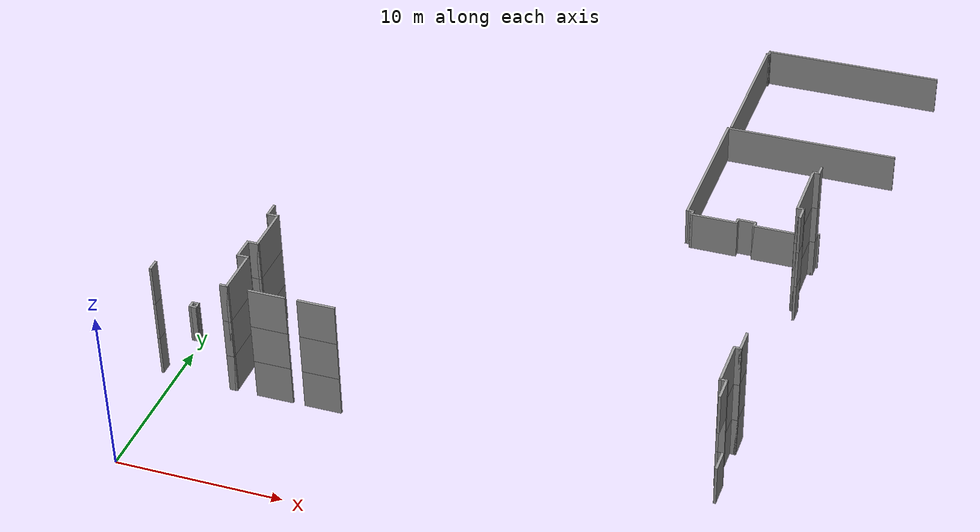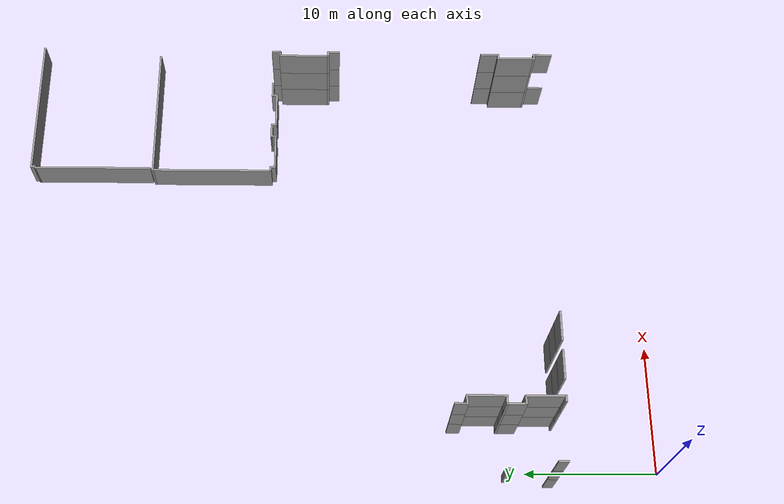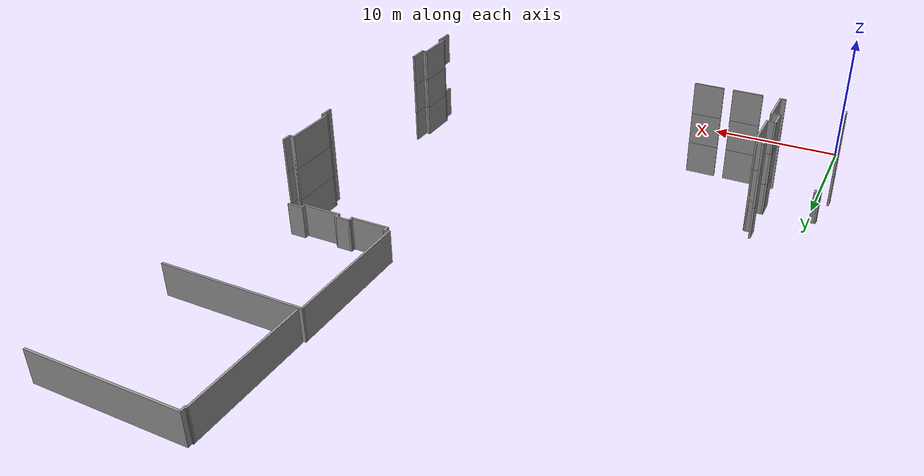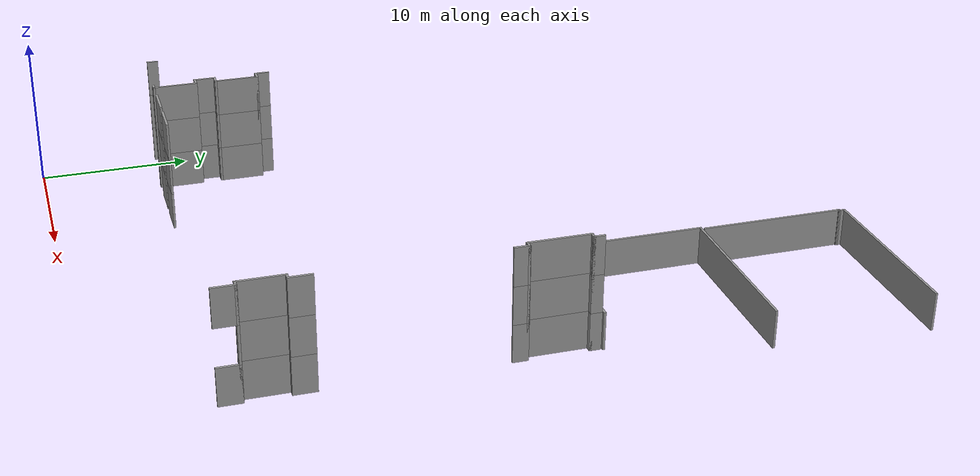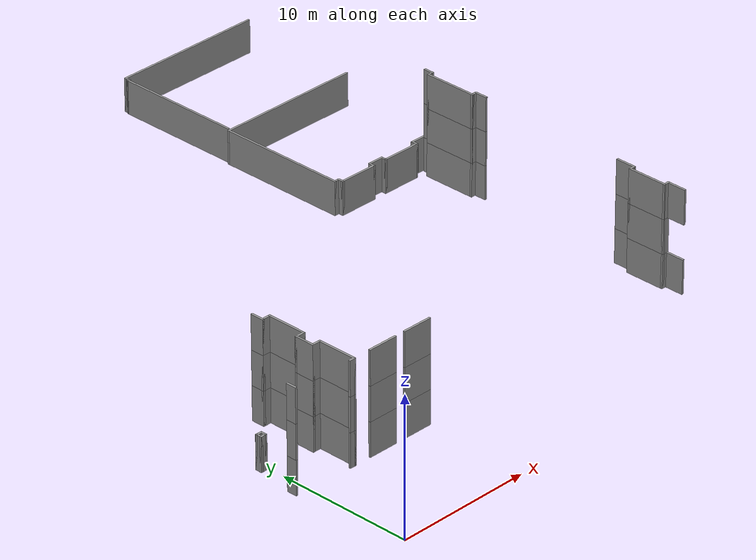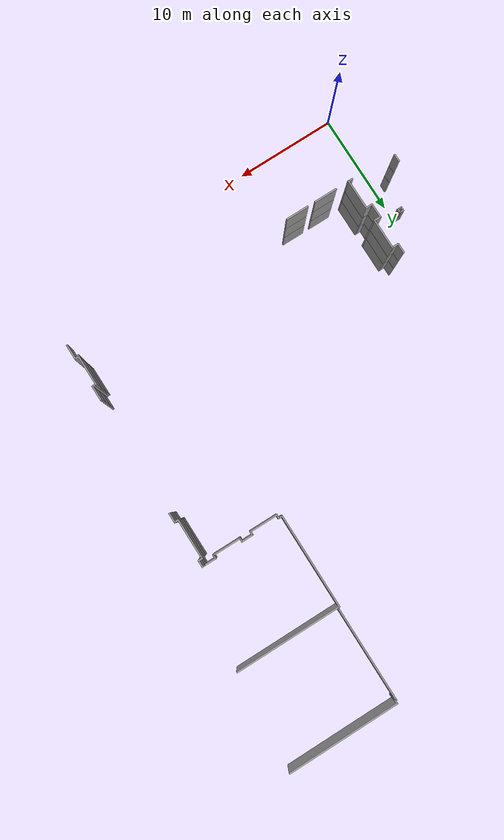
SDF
<sdf version="1.7">
 <model name="mapagazebo">
  <pose>-4.67869 9.01252 0 0 -0 0</pose>
  <link name="Wall_1118">
   <collision name="Wall_1118_Collision">
    <geometry><box><size>1 0.15 2.5</size></box></geometry>
    <pose>0 0 1.25 0 -0 0</pose>
   </collision>
   <visual name="Wall_1118_Visual">
    <pose>0 0 1.25 0 -0 0</pose>
    <geometry><box><size>1 0.15 2.5</size></box></geometry>
    <material>
     <script><uri>file://media/materials/scripts/gazebo.material</uri><name>Gazebo/Grey</name></script>
     <ambient>1 1 1 1</ambient>
    </material>
    <meta><layer>1</layer></meta>
   </visual>
   <pose>7.87733 6.27794 2.5 0 -0 -1.5708</pose>
  </link>
  <link name="Wall_1119">
   <collision name="Wall_1119_Collision">
    <geometry><box><size>0.75 0.15 2.5</size></box></geometry>
    <pose>0 0 1.25 0 -0 0</pose>
   </collision>
   <visual name="Wall_1119_Visual">
    <pose>0 0 1.25 0 -0 0</pose>
    <geometry><box><size>0.75 0.15 2.5</size></box></geometry>
    <material>
     <script><uri>file://media/materials/scripts/gazebo.material</uri><name>Gazebo/Grey</name></script>
     <ambient>1 1 1 1</ambient>
    </material>
    <meta><layer>1</layer></meta>
   </visual>
   <pose>8.17733 5.85294 2.5 0 -0 0</pose>
  </link>
  <link name="Wall_1120">
   <collision name="Wall_1120_Collision">
    <geometry><box><size>3 0.15 2.5</size></box></geometry>
    <pose>0 0 1.25 0 -0 0</pose>
   </collision>
   <visual name="Wall_1120_Visual">
    <pose>0 0 1.25 0 -0 0</pose>
    <geometry><box><size>3 0.15 2.5</size></box></geometry>
    <material>
     <script><uri>file://media/materials/scripts/gazebo.material</uri><name>Gazebo/Grey</name></script>
     <ambient>1 1 1 1</ambient>
    </material>
    <meta><layer>1</layer></meta>
   </visual>
   <pose>8.47733 4.42794 2.5 0 -0 -1.5708</pose>
  </link>
  <link name="Wall_1121">
   <collision name="Wall_1121_Collision">
    <geometry><box><size>0.75 0.15 2.5</size></box></geometry>
    <pose>0 0 1.25 0 -0 0</pose>
   </collision>
   <visual name="Wall_1121_Visual">
    <pose>0 0 1.25 0 -0 0</pose>
    <geometry><box><size>0.75 0.15 2.5</size></box></geometry>
    <material>
     <script><uri>file://media/materials/scripts/gazebo.material</uri><name>Gazebo/Grey</name></script>
     <ambient>1 1 1 1</ambient>
    </material>
    <meta><layer>1</layer></meta>
   </visual>
   <pose>8.17733 3.00294 2.5 0 -0 3.14159</pose>
  </link>
  <link name="Wall_1122">
   <collision name="Wall_1122_Collision">
    <geometry><box><size>1.5 0.15 2.5</size></box></geometry>
    <pose>0 0 1.25 0 -0 0</pose>
   </collision>
   <visual name="Wall_1122_Visual">
    <pose>0 0 1.25 0 -0 0</pose>
    <geometry><box><size>1.5 0.15 2.5</size></box></geometry>
    <material>
     <script><uri>file://media/materials/scripts/gazebo.material</uri><name>Gazebo/Grey</name></script>
     <ambient>1 1 1 1</ambient>
    </material>
    <meta><layer>1</layer></meta>
   </visual>
   <pose>7.87733 2.32794 2.5 0 -0 -1.5708</pose>
  </link>
  <link name="Wall_1123">
   <collision name="Wall_1123_Collision">
    <geometry><box><size>0.75 0.15 2.5</size></box></geometry>
    <pose>0 0 1.25 0 -0 0</pose>
   </collision>
   <visual name="Wall_1123_Visual">
    <pose>0 0 1.25 0 -0 0</pose>
    <geometry><box><size>0.75 0.15 2.5</size></box></geometry>
    <material>
     <script><uri>file://media/materials/scripts/gazebo.material</uri><name>Gazebo/Grey</name></script>
     <ambient>1 1 1 1</ambient>
    </material>
    <meta><layer>1</layer></meta>
   </visual>
   <pose>8.17733 1.65294 2.5 0 -0 0</pose>
  </link>
  <link name="Wall_1124">
   <collision name="Wall_1124_Collision">
    <geometry><box><size>3 0.15 2.5</size></box></geometry>
    <pose>0 0 1.25 0 -0 0</pose>
   </collision>
   <visual name="Wall_1124_Visual">
    <pose>0 0 1.25 0 -0 0</pose>
    <geometry><box><size>3 0.15 2.5</size></box></geometry>
    <material>
     <script><uri>file://media/materials/scripts/gazebo.material</uri><name>Gazebo/Grey</name></script>
     <ambient>1 1 1 1</ambient>
    </material>
    <meta><layer>1</layer></meta>
   </visual>
   <pose>8.47733 0.22794 2.5 0 -0 -1.5708</pose>
  </link>
  <link name="Wall_1125">
   <collision name="Wall_1125_Collision">
    <geometry><box><size>0.5 0.15 2.5</size></box></geometry>
    <pose>0 0 1.25 0 -0 0</pose>
   </collision>
   <visual name="Wall_1125_Visual">
    <pose>0 0 1.25 0 -0 0</pose>
    <geometry><box><size>0.5 0.15 2.5</size></box></geometry>
    <material>
     <script><uri>file://media/materials/scripts/gazebo.material</uri><name>Gazebo/Grey</name></script>
     <ambient>1 1 1 1</ambient>
    </material>
    <meta><layer>1</layer></meta>
   </visual>
   <pose>8.30233 -1.19706 2.5 0 -0 3.14159</pose>
  </link>
  <link name="Wall_1130">
   <collision name="Wall_1130_Collision">
    <geometry><box><size>2.25 0.15 2.5</size></box></geometry>
    <pose>0 0 1.25 0 -0 0</pose>
   </collision>
   <visual name="Wall_1130_Visual">
    <pose>0 0 1.25 0 -0 0</pose>
    <geometry><box><size>2.25 0.15 2.5</size></box></geometry>
    <material>
     <script><uri>file://media/materials/scripts/gazebo.material</uri><name>Gazebo/Grey</name></script>
     <ambient>1 1 1 1</ambient>
    </material>
    <meta><layer>1</layer></meta>
   </visual>
   <pose>10.8773 -1.19706 2.5 0 -0 0</pose>
  </link>
  <link name="Wall_1134">
   <collision name="Wall_1134_Collision">
    <geometry><box><size>2.25 0.15 2.5</size></box></geometry>
    <pose>0 0 1.25 0 -0 0</pose>
   </collision>
   <visual name="Wall_1134_Visual">
    <pose>0 0 1.25 0 -0 0</pose>
    <geometry><box><size>2.25 0.15 2.5</size></box></geometry>
    <material>
     <script><uri>file://media/materials/scripts/gazebo.material</uri><name>Gazebo/Grey</name></script>
     <ambient>1 1 1 1</ambient>
    </material>
    <meta><layer>1</layer></meta>
   </visual>
   <pose>13.8273 -1.19706 2.5 0 -0 0</pose>
  </link>
  <link name="Wall_1177">
   <collision name="Wall_1177_Collision">
    <geometry><box><size>0.5 0.15 2.5</size></box></geometry>
    <pose>0 0 1.25 0 -0 0</pose>
   </collision>
   <visual name="Wall_1177_Visual">
    <pose>0 0 1.25 0 -0 0</pose>
    <geometry><box><size>0.5 0.15 2.5</size></box></geometry>
    <material>
     <script><uri>file://media/materials/scripts/gazebo.material</uri><name>Gazebo/Grey</name></script>
     <ambient>1 1 1 1</ambient>
    </material>
    <meta><layer>1</layer></meta>
   </visual>
   <pose>36.8462 -0.548499 2.5 0 -0 3.14159</pose>
  </link>
  <link name="Wall_1178">
   <collision name="Wall_1178_Collision">
    <geometry><box><size>3 0.15 2.5</size></box></geometry>
    <pose>0 0 1.25 0 -0 0</pose>
   </collision>
   <visual name="Wall_1178_Visual">
    <pose>0 0 1.25 0 -0 0</pose>
    <geometry><box><size>3 0.15 2.5</size></box></geometry>
    <material>
     <script><uri>file://media/materials/scripts/gazebo.material</uri><name>Gazebo/Grey</name></script>
     <ambient>1 1 1 1</ambient>
    </material>
    <meta><layer>1</layer></meta>
   </visual>
   <pose>36.6712 0.876501 2.5 0 -0 1.5708</pose>
  </link>
  <link name="Wall_1179">
   <collision name="Wall_1179_Collision">
    <geometry><box><size>0.5 0.15 2.5</size></box></geometry>
    <pose>0 0 1.25 0 -0 0</pose>
   </collision>
   <visual name="Wall_1179_Visual">
    <pose>0 0 1.25 0 -0 0</pose>
    <geometry><box><size>0.5 0.15 2.5</size></box></geometry>
    <material>
     <script><uri>file://media/materials/scripts/gazebo.material</uri><name>Gazebo/Grey</name></script>
     <ambient>1 1 1 1</ambient>
    </material>
    <meta><layer>1</layer></meta>
   </visual>
   <pose>36.8462 2.3015 2.5 0 -0 0</pose>
  </link>
  <link name="Wall_1180">
   <collision name="Wall_1180_Collision">
    <geometry><box><size>1.5 0.15 2.5</size></box></geometry>
    <pose>0 0 1.25 0 -0 0</pose>
   </collision>
   <visual name="Wall_1180_Visual">
    <pose>0 0 1.25 0 -0 0</pose>
    <geometry><box><size>1.5 0.15 2.5</size></box></geometry>
    <material>
     <script><uri>file://media/materials/scripts/gazebo.material</uri><name>Gazebo/Grey</name></script>
     <ambient>1 1 1 1</ambient>
    </material>
    <meta><layer>1</layer></meta>
   </visual>
   <pose>37.0212 2.9765 2.5 0 -0 1.5708</pose>
  </link>
  <link name="Wall_1234">
   <collision name="Wall_1234_Collision">
    <geometry><box><size>1 0.15 2.5</size></box></geometry>
    <pose>0 0 1.25 0 -0 0</pose>
   </collision>
   <visual name="Wall_1234_Visual">
    <pose>0 0 1.25 0 -0 0</pose>
    <geometry><box><size>1 0.15 2.5</size></box></geometry>
    <material>
     <script><uri>file://media/materials/scripts/gazebo.material</uri><name>Gazebo/Grey</name></script>
     <ambient>1 1 1 1</ambient>
    </material>
    <meta><layer>1</layer></meta>
   </visual>
   <pose>37.1749 15.552 2.5 0 -0 1.5708</pose>
  </link>
  <link name="Wall_1235">
   <collision name="Wall_1235_Collision">
    <geometry><box><size>0.5 0.15 2.5</size></box></geometry>
    <pose>0 0 1.25 0 -0 0</pose>
   </collision>
   <visual name="Wall_1235_Visual">
    <pose>0 0 1.25 0 -0 0</pose>
    <geometry><box><size>0.5 0.15 2.5</size></box></geometry>
    <material>
     <script><uri>file://media/materials/scripts/gazebo.material</uri><name>Gazebo/Grey</name></script>
     <ambient>1 1 1 1</ambient>
    </material>
    <meta><layer>1</layer></meta>
   </visual>
   <pose>36.9999 15.977 2.5 0 -0 3.14159</pose>
  </link>
  <link name="Wall_1236">
   <collision name="Wall_1236_Collision">
    <geometry><box><size>4 0.15 2.5</size></box></geometry>
    <pose>0 0 1.25 0 -0 0</pose>
   </collision>
   <visual name="Wall_1236_Visual">
    <pose>0 0 1.25 0 -0 0</pose>
    <geometry><box><size>4 0.15 2.5</size></box></geometry>
    <material>
     <script><uri>file://media/materials/scripts/gazebo.material</uri><name>Gazebo/Grey</name></script>
     <ambient>1 1 1 1</ambient>
    </material>
    <meta><layer>1</layer></meta>
   </visual>
   <pose>36.8249 17.902 2.5 0 -0 1.5708</pose>
  </link>
  <link name="Wall_1237">
   <collision name="Wall_1237_Collision">
    <geometry><box><size>0.5 0.15 2.5</size></box></geometry>
    <pose>0 0 1.25 0 -0 0</pose>
   </collision>
   <visual name="Wall_1237_Visual">
    <pose>0 0 1.25 0 -0 0</pose>
    <geometry><box><size>0.5 0.15 2.5</size></box></geometry>
    <material>
     <script><uri>file://media/materials/scripts/gazebo.material</uri><name>Gazebo/Grey</name></script>
     <ambient>1 1 1 1</ambient>
    </material>
    <meta><layer>1</layer></meta>
   </visual>
   <pose>36.9999 19.827 2.5 0 -0 0</pose>
  </link>
  <link name="Wall_1238">
   <collision name="Wall_1238_Collision">
    <geometry><box><size>0.75 0.15 2.5</size></box></geometry>
    <pose>0 0 1.25 0 -0 0</pose>
   </collision>
   <visual name="Wall_1238_Visual">
    <pose>0 0 1.25 0 -0 0</pose>
    <geometry><box><size>0.75 0.15 2.5</size></box></geometry>
    <material>
     <script><uri>file://media/materials/scripts/gazebo.material</uri><name>Gazebo/Grey</name></script>
     <ambient>1 1 1 1</ambient>
    </material>
    <meta><layer>1</layer></meta>
   </visual>
   <pose>37.1749 20.127 2.5 0 -0 1.5708</pose>
  </link>
  <link name="Wall_1341">
   <collision name="Wall_1341_Collision">
    <geometry><box><size>0.75 0.15 2.5</size></box></geometry>
    <pose>0 0 1.25 0 -0 0</pose>
   </collision>
   <visual name="Wall_1341_Visual">
    <pose>0 0 1.25 0 -0 0</pose>
    <geometry><box><size>0.75 0.15 2.5</size></box></geometry>
    <material>
     <script><uri>file://media/materials/scripts/gazebo.material</uri><name>Gazebo/Grey</name></script>
     <ambient>1 1 1 1</ambient>
    </material>
    <meta><layer>1</layer></meta>
   </visual>
   <pose>3.73809 -0.707692 2.5 0 -0 1.5708</pose>
  </link>
  <link name="Wall_1742">
   <collision name="Wall_1742_Collision">
    <geometry><box><size>1 0.15 2.5</size></box></geometry>
    <pose>0 0 1.25 0 -0 0</pose>
   </collision>
   <visual name="Wall_1742_Visual">
    <pose>0 0 1.25 0 -0 0</pose>
    <geometry><box><size>1 0.15 2.5</size></box></geometry>
    <material>
     <script><uri>file://media/materials/scripts/gazebo.material</uri><name>Gazebo/Grey</name></script>
     <ambient>1 1 1 1</ambient>
    </material>
    <meta><layer>2</layer></meta>
   </visual>
   <pose>7.87733 6.27794 5 0 -0 -1.5708</pose>
  </link>
  <link name="Wall_1743">
   <collision name="Wall_1743_Collision">
    <geometry><box><size>0.75 0.15 2.5</size></box></geometry>
    <pose>0 0 1.25 0 -0 0</pose>
   </collision>
   <visual name="Wall_1743_Visual">
    <pose>0 0 1.25 0 -0 0</pose>
    <geometry><box><size>0.75 0.15 2.5</size></box></geometry>
    <material>
     <script><uri>file://media/materials/scripts/gazebo.material</uri><name>Gazebo/Grey</name></script>
     <ambient>1 1 1 1</ambient>
    </material>
    <meta><layer>2</layer></meta>
   </visual>
   <pose>8.17733 5.85294 5 0 -0 0</pose>
  </link>
  <link name="Wall_1744">
   <collision name="Wall_1744_Collision">
    <geometry><box><size>3 0.15 2.5</size></box></geometry>
    <pose>0 0 1.25 0 -0 0</pose>
   </collision>
   <visual name="Wall_1744_Visual">
    <pose>0 0 1.25 0 -0 0</pose>
    <geometry><box><size>3 0.15 2.5</size></box></geometry>
    <material>
     <script><uri>file://media/materials/scripts/gazebo.material</uri><name>Gazebo/Grey</name></script>
     <ambient>1 1 1 1</ambient>
    </material>
    <meta><layer>2</layer></meta>
   </visual>
   <pose>8.47733 4.42794 5 0 -0 -1.5708</pose>
  </link>
  <link name="Wall_1745">
   <collision name="Wall_1745_Collision">
    <geometry><box><size>0.75 0.15 2.5</size></box></geometry>
    <pose>0 0 1.25 0 -0 0</pose>
   </collision>
   <visual name="Wall_1745_Visual">
    <pose>0 0 1.25 0 -0 0</pose>
    <geometry><box><size>0.75 0.15 2.5</size></box></geometry>
    <material>
     <script><uri>file://media/materials/scripts/gazebo.material</uri><name>Gazebo/Grey</name></script>
     <ambient>1 1 1 1</ambient>
    </material>
    <meta><layer>2</layer></meta>
   </visual>
   <pose>8.17733 3.00294 5 0 -0 3.14159</pose>
  </link>
  <link name="Wall_1746">
   <collision name="Wall_1746_Collision">
    <geometry><box><size>1.5 0.15 2.5</size></box></geometry>
    <pose>0 0 1.25 0 -0 0</pose>
   </collision>
   <visual name="Wall_1746_Visual">
    <pose>0 0 1.25 0 -0 0</pose>
    <geometry><box><size>1.5 0.15 2.5</size></box></geometry>
    <material>
     <script><uri>file://media/materials/scripts/gazebo.material</uri><name>Gazebo/Grey</name></script>
     <ambient>1 1 1 1</ambient>
    </material>
    <meta><layer>2</layer></meta>
   </visual>
   <pose>7.87733 2.32794 5 0 -0 -1.5708</pose>
  </link>
  <link name="Wall_1747">
   <collision name="Wall_1747_Collision">
    <geometry><box><size>0.75 0.15 2.5</size></box></geometry>
    <pose>0 0 1.25 0 -0 0</pose>
   </collision>
   <visual name="Wall_1747_Visual">
    <pose>0 0 1.25 0 -0 0</pose>
    <geometry><box><size>0.75 0.15 2.5</size></box></geometry>
    <material>
     <script><uri>file://media/materials/scripts/gazebo.material</uri><name>Gazebo/Grey</name></script>
     <ambient>1 1 1 1</ambient>
    </material>
    <meta><layer>2</layer></meta>
   </visual>
   <pose>8.17733 1.65294 5 0 -0 0</pose>
  </link>
  <link name="Wall_1748">
   <collision name="Wall_1748_Collision">
    <geometry><box><size>3 0.15 2.5</size></box></geometry>
    <pose>0 0 1.25 0 -0 0</pose>
   </collision>
   <visual name="Wall_1748_Visual">
    <pose>0 0 1.25 0 -0 0</pose>
    <geometry><box><size>3 0.15 2.5</size></box></geometry>
    <material>
     <script><uri>file://media/materials/scripts/gazebo.material</uri><name>Gazebo/Grey</name></script>
     <ambient>1 1 1 1</ambient>
    </material>
    <meta><layer>2</layer></meta>
   </visual>
   <pose>8.47733 0.22794 5 0 -0 -1.5708</pose>
  </link>
  <link name="Wall_1749">
   <collision name="Wall_1749_Collision">
    <geometry><box><size>0.5 0.15 2.5</size></box></geometry>
    <pose>0 0 1.25 0 -0 0</pose>
   </collision>
   <visual name="Wall_1749_Visual">
    <pose>0 0 1.25 0 -0 0</pose>
    <geometry><box><size>0.5 0.15 2.5</size></box></geometry>
    <material>
     <script><uri>file://media/materials/scripts/gazebo.material</uri><name>Gazebo/Grey</name></script>
     <ambient>1 1 1 1</ambient>
    </material>
    <meta><layer>2</layer></meta>
   </visual>
   <pose>8.30233 -1.19706 5 0 -0 3.14159</pose>
  </link>
  <link name="Wall_1754">
   <collision name="Wall_1754_Collision">
    <geometry><box><size>2.25 0.15 2.5</size></box></geometry>
    <pose>0 0 1.25 0 -0 0</pose>
   </collision>
   <visual name="Wall_1754_Visual">
    <pose>0 0 1.25 0 -0 0</pose>
    <geometry><box><size>2.25 0.15 2.5</size></box></geometry>
    <material>
     <script><uri>file://media/materials/scripts/gazebo.material</uri><name>Gazebo/Grey</name></script>
     <ambient>1 1 1 1</ambient>
    </material>
    <meta><layer>2</layer></meta>
   </visual>
   <pose>10.8773 -1.19706 5 0 -0 0</pose>
  </link>
  <link name="Wall_1758">
   <collision name="Wall_1758_Collision">
    <geometry><box><size>2.25 0.15 2.5</size></box></geometry>
    <pose>0 0 1.25 0 -0 0</pose>
   </collision>
   <visual name="Wall_1758_Visual">
    <pose>0 0 1.25 0 -0 0</pose>
    <geometry><box><size>2.25 0.15 2.5</size></box></geometry>
    <material>
     <script><uri>file://media/materials/scripts/gazebo.material</uri><name>Gazebo/Grey</name></script>
     <ambient>1 1 1 1</ambient>
    </material>
    <meta><layer>2</layer></meta>
   </visual>
   <pose>13.8273 -1.19706 5 0 -0 0</pose>
  </link>
  <link name="Wall_1800">
   <collision name="Wall_1800_Collision">
    <geometry><box><size>1.5 0.15 2.5</size></box></geometry>
    <pose>0 0 1.25 0 -0 0</pose>
   </collision>
   <visual name="Wall_1800_Visual">
    <pose>0 0 1.25 0 -0 0</pose>
    <geometry><box><size>1.5 0.15 2.5</size></box></geometry>
    <material>
     <script><uri>file://media/materials/scripts/gazebo.material</uri><name>Gazebo/Grey</name></script>
     <ambient>1 1 1 1</ambient>
    </material>
    <meta><layer>2</layer></meta>
   </visual>
   <pose>37.0212 -1.2235 5 0 -0 1.5708</pose>
  </link>
  <link name="Wall_1801">
   <collision name="Wall_1801_Collision">
    <geometry><box><size>0.5 0.15 2.5</size></box></geometry>
    <pose>0 0 1.25 0 -0 0</pose>
   </collision>
   <visual name="Wall_1801_Visual">
    <pose>0 0 1.25 0 -0 0</pose>
    <geometry><box><size>0.5 0.15 2.5</size></box></geometry>
    <material>
     <script><uri>file://media/materials/scripts/gazebo.material</uri><name>Gazebo/Grey</name></script>
     <ambient>1 1 1 1</ambient>
    </material>
    <meta><layer>2</layer></meta>
   </visual>
   <pose>36.8462 -0.548499 5 0 -0 3.14159</pose>
  </link>
  <link name="Wall_1802">
   <collision name="Wall_1802_Collision">
    <geometry><box><size>3 0.15 2.5</size></box></geometry>
    <pose>0 0 1.25 0 -0 0</pose>
   </collision>
   <visual name="Wall_1802_Visual">
    <pose>0 0 1.25 0 -0 0</pose>
    <geometry><box><size>3 0.15 2.5</size></box></geometry>
    <material>
     <script><uri>file://media/materials/scripts/gazebo.material</uri><name>Gazebo/Grey</name></script>
     <ambient>1 1 1 1</ambient>
    </material>
    <meta><layer>2</layer></meta>
   </visual>
   <pose>36.6712 0.876501 5 0 -0 1.5708</pose>
  </link>
  <link name="Wall_1803">
   <collision name="Wall_1803_Collision">
    <geometry><box><size>0.5 0.15 2.5</size></box></geometry>
    <pose>0 0 1.25 0 -0 0</pose>
   </collision>
   <visual name="Wall_1803_Visual">
    <pose>0 0 1.25 0 -0 0</pose>
    <geometry><box><size>0.5 0.15 2.5</size></box></geometry>
    <material>
     <script><uri>file://media/materials/scripts/gazebo.material</uri><name>Gazebo/Grey</name></script>
     <ambient>1 1 1 1</ambient>
    </material>
    <meta><layer>2</layer></meta>
   </visual>
   <pose>36.8462 2.3015 5 0 -0 0</pose>
  </link>
  <link name="Wall_1804">
   <collision name="Wall_1804_Collision">
    <geometry><box><size>1.5 0.15 2.5</size></box></geometry>
    <pose>0 0 1.25 0 -0 0</pose>
   </collision>
   <visual name="Wall_1804_Visual">
    <pose>0 0 1.25 0 -0 0</pose>
    <geometry><box><size>1.5 0.15 2.5</size></box></geometry>
    <material>
     <script><uri>file://media/materials/scripts/gazebo.material</uri><name>Gazebo/Grey</name></script>
     <ambient>1 1 1 1</ambient>
    </material>
    <meta><layer>2</layer></meta>
   </visual>
   <pose>37.0212 2.9765 5 0 -0 1.5708</pose>
  </link>
  <link name="Wall_1858">
   <collision name="Wall_1858_Collision">
    <geometry><box><size>1 0.15 2.5</size></box></geometry>
    <pose>0 0 1.25 0 -0 0</pose>
   </collision>
   <visual name="Wall_1858_Visual">
    <pose>0 0 1.25 0 -0 0</pose>
    <geometry><box><size>1 0.15 2.5</size></box></geometry>
    <material>
     <script><uri>file://media/materials/scripts/gazebo.material</uri><name>Gazebo/Grey</name></script>
     <ambient>1 1 1 1</ambient>
    </material>
    <meta><layer>2</layer></meta>
   </visual>
   <pose>37.1749 15.552 5 0 -0 1.5708</pose>
  </link>
  <link name="Wall_1859">
   <collision name="Wall_1859_Collision">
    <geometry><box><size>0.5 0.15 2.5</size></box></geometry>
    <pose>0 0 1.25 0 -0 0</pose>
   </collision>
   <visual name="Wall_1859_Visual">
    <pose>0 0 1.25 0 -0 0</pose>
    <geometry><box><size>0.5 0.15 2.5</size></box></geometry>
    <material>
     <script><uri>file://media/materials/scripts/gazebo.material</uri><name>Gazebo/Grey</name></script>
     <ambient>1 1 1 1</ambient>
    </material>
    <meta><layer>2</layer></meta>
   </visual>
   <pose>36.9999 15.977 5 0 -0 3.14159</pose>
  </link>
  <link name="Wall_1860">
   <collision name="Wall_1860_Collision">
    <geometry><box><size>4 0.15 2.5</size></box></geometry>
    <pose>0 0 1.25 0 -0 0</pose>
   </collision>
   <visual name="Wall_1860_Visual">
    <pose>0 0 1.25 0 -0 0</pose>
    <geometry><box><size>4 0.15 2.5</size></box></geometry>
    <material>
     <script><uri>file://media/materials/scripts/gazebo.material</uri><name>Gazebo/Grey</name></script>
     <ambient>1 1 1 1</ambient>
    </material>
    <meta><layer>2</layer></meta>
   </visual>
   <pose>36.8249 17.902 5 0 -0 1.5708</pose>
  </link>
  <link name="Wall_1861">
   <collision name="Wall_1861_Collision">
    <geometry><box><size>0.5 0.15 2.5</size></box></geometry>
    <pose>0 0 1.25 0 -0 0</pose>
   </collision>
   <visual name="Wall_1861_Visual">
    <pose>0 0 1.25 0 -0 0</pose>
    <geometry><box><size>0.5 0.15 2.5</size></box></geometry>
    <material>
     <script><uri>file://media/materials/scripts/gazebo.material</uri><name>Gazebo/Grey</name></script>
     <ambient>1 1 1 1</ambient>
    </material>
    <meta><layer>2</layer></meta>
   </visual>
   <pose>36.9999 19.827 5 0 -0 0</pose>
  </link>
  <link name="Wall_1862">
   <collision name="Wall_1862_Collision">
    <geometry><box><size>0.75 0.15 2.5</size></box></geometry>
    <pose>0 0 1.25 0 -0 0</pose>
   </collision>
   <visual name="Wall_1862_Visual">
    <pose>0 0 1.25 0 -0 0</pose>
    <geometry><box><size>0.75 0.15 2.5</size></box></geometry>
    <material>
     <script><uri>file://media/materials/scripts/gazebo.material</uri><name>Gazebo/Grey</name></script>
     <ambient>1 1 1 1</ambient>
    </material>
    <meta><layer>2</layer></meta>
   </visual>
   <pose>37.1749 20.127 5 0 -0 1.5708</pose>
  </link>
  <link name="Wall_1965">
   <collision name="Wall_1965_Collision">
    <geometry><box><size>0.75 0.15 2.5</size></box></geometry>
    <pose>0 0 1.25 0 -0 0</pose>
   </collision>
   <visual name="Wall_1965_Visual">
    <pose>0 0 1.25 0 -0 0</pose>
    <geometry><box><size>0.75 0.15 2.5</size></box></geometry>
    <material>
     <script><uri>file://media/materials/scripts/gazebo.material</uri><name>Gazebo/Grey</name></script>
     <ambient>1 1 1 1</ambient>
    </material>
    <meta><layer>2</layer></meta>
   </visual>
   <pose>3.73809 -0.707692 5 0 -0 1.5708</pose>
  </link>
  <link name="Wall_2056">
   <collision name="Wall_2056_Collision">
    <geometry><box><size>11 0.15 2.5</size></box></geometry>
    <pose>0 0 1.25 0 -0 0</pose>
   </collision>
   <visual name="Wall_2056_Visual">
    <pose>0 0 1.25 0 -0 0</pose>
    <geometry><box><size>11 0.15 2.5</size></box></geometry>
    <material>
     <script><uri>file://media/materials/scripts/gazebo.material</uri><name>Gazebo/Grey</name></script>
     <ambient>1 1 1 1</ambient>
    </material>
    <meta><layer>0</layer></meta>
   </visual>
   <pose>34.4523 30.2232 0 0 -0 3.14159</pose>
  </link>
  <link name="Wall_2057">
   <collision name="Wall_2057_Collision">
    <geometry><box><size>9.75 0.15 2.5</size></box></geometry>
    <pose>0 0 1.25 0 -0 0</pose>
   </collision>
   <visual name="Wall_2057_Visual">
    <pose>0 0 1.25 0 -0 0</pose>
    <geometry><box><size>9.75 0.15 2.5</size></box></geometry>
    <material>
     <script><uri>file://media/materials/scripts/gazebo.material</uri><name>Gazebo/Grey</name></script>
     <ambient>1 1 1 1</ambient>
    </material>
    <meta><layer>0</layer></meta>
   </visual>
   <pose>29.0273 25.4232 0 0 -0 -1.5708</pose>
  </link>
  <link name="Wall_2060">
   <collision name="Wall_2060_Collision">
    <geometry><box><size>0.5 0.15 2.5</size></box></geometry>
    <pose>0 0 1.25 0 -0 0</pose>
   </collision>
   <visual name="Wall_2060_Visual">
    <pose>0 0 1.25 0 -0 0</pose>
    <geometry><box><size>0.5 0.15 2.5</size></box></geometry>
    <material>
     <script><uri>file://media/materials/scripts/gazebo.material</uri><name>Gazebo/Grey</name></script>
     <ambient>1 1 1 1</ambient>
    </material>
    <meta><layer>0</layer></meta>
   </visual>
   <pose>29.2023 20.6232 0 0 -0 0</pose>
  </link>
  <link name="Wall_2061">
   <collision name="Wall_2061_Collision">
    <geometry><box><size>0.5 0.15 2.5</size></box></geometry>
    <pose>0 0 1.25 0 -0 0</pose>
   </collision>
   <visual name="Wall_2061_Visual">
    <pose>0 0 1.25 0 -0 0</pose>
    <geometry><box><size>0.5 0.15 2.5</size></box></geometry>
    <material>
     <script><uri>file://media/materials/scripts/gazebo.material</uri><name>Gazebo/Grey</name></script>
     <ambient>1 1 1 1</ambient>
    </material>
    <meta><layer>0</layer></meta>
   </visual>
   <pose>29.3773 20.4482 0 0 -0 -1.5708</pose>
  </link>
  <link name="Wall_2062">
   <collision name="Wall_2062_Collision">
    <geometry><box><size>3 0.15 2.5</size></box></geometry>
    <pose>0 0 1.25 0 -0 0</pose>
   </collision>
   <visual name="Wall_2062_Visual">
    <pose>0 0 1.25 0 -0 0</pose>
    <geometry><box><size>3 0.15 2.5</size></box></geometry>
    <material>
     <script><uri>file://media/materials/scripts/gazebo.material</uri><name>Gazebo/Grey</name></script>
     <ambient>1 1 1 1</ambient>
    </material>
    <meta><layer>0</layer></meta>
   </visual>
   <pose>30.8023 20.2732 0 0 -0 0</pose>
  </link>
  <link name="Wall_2063">
   <collision name="Wall_2063_Collision">
    <geometry><box><size>0.5 0.15 2.5</size></box></geometry>
    <pose>0 0 1.25 0 -0 0</pose>
   </collision>
   <visual name="Wall_2063_Visual">
    <pose>0 0 1.25 0 -0 0</pose>
    <geometry><box><size>0.5 0.15 2.5</size></box></geometry>
    <material>
     <script><uri>file://media/materials/scripts/gazebo.material</uri><name>Gazebo/Grey</name></script>
     <ambient>1 1 1 1</ambient>
    </material>
    <meta><layer>0</layer></meta>
   </visual>
   <pose>32.2273 20.4482 0 0 -0 1.5708</pose>
  </link>
  <link name="Wall_2064">
   <collision name="Wall_2064_Collision">
    <geometry><box><size>1.25 0.15 2.5</size></box></geometry>
    <pose>0 0 1.25 0 -0 0</pose>
   </collision>
   <visual name="Wall_2064_Visual">
    <pose>0 0 1.25 0 -0 0</pose>
    <geometry><box><size>1.25 0.15 2.5</size></box></geometry>
    <material>
     <script><uri>file://media/materials/scripts/gazebo.material</uri><name>Gazebo/Grey</name></script>
     <ambient>1 1 1 1</ambient>
    </material>
    <meta><layer>0</layer></meta>
   </visual>
   <pose>32.7773 20.6232 0 0 -0 0</pose>
  </link>
  <link name="Wall_2065">
   <collision name="Wall_2065_Collision">
    <geometry><box><size>0.5 0.15 2.5</size></box></geometry>
    <pose>0 0 1.25 0 -0 0</pose>
   </collision>
   <visual name="Wall_2065_Visual">
    <pose>0 0 1.25 0 -0 0</pose>
    <geometry><box><size>0.5 0.15 2.5</size></box></geometry>
    <material>
     <script><uri>file://media/materials/scripts/gazebo.material</uri><name>Gazebo/Grey</name></script>
     <ambient>1 1 1 1</ambient>
    </material>
    <meta><layer>0</layer></meta>
   </visual>
   <pose>33.3273 20.4482 0 0 -0 -1.5708</pose>
  </link>
  <link name="Wall_2066">
   <collision name="Wall_2066_Collision">
    <geometry><box><size>3 0.15 2.5</size></box></geometry>
    <pose>0 0 1.25 0 -0 0</pose>
   </collision>
   <visual name="Wall_2066_Visual">
    <pose>0 0 1.25 0 -0 0</pose>
    <geometry><box><size>3 0.15 2.5</size></box></geometry>
    <material>
     <script><uri>file://media/materials/scripts/gazebo.material</uri><name>Gazebo/Grey</name></script>
     <ambient>1 1 1 1</ambient>
    </material>
    <meta><layer>0</layer></meta>
   </visual>
   <pose>34.7523 20.2732 0 0 -0 0</pose>
  </link>
  <link name="Wall_2067">
   <collision name="Wall_2067_Collision">
    <geometry><box><size>0.5 0.15 2.5</size></box></geometry>
    <pose>0 0 1.25 0 -0 0</pose>
   </collision>
   <visual name="Wall_2067_Visual">
    <pose>0 0 1.25 0 -0 0</pose>
    <geometry><box><size>0.5 0.15 2.5</size></box></geometry>
    <material>
     <script><uri>file://media/materials/scripts/gazebo.material</uri><name>Gazebo/Grey</name></script>
     <ambient>1 1 1 1</ambient>
    </material>
    <meta><layer>0</layer></meta>
   </visual>
   <pose>36.1773 20.4482 0 0 -0 1.5708</pose>
  </link>
  <link name="Wall_2068">
   <collision name="Wall_2068_Collision">
    <geometry><box><size>1.25 0.15 2.5</size></box></geometry>
    <pose>0 0 1.25 0 -0 0</pose>
   </collision>
   <visual name="Wall_2068_Visual">
    <pose>0 0 1.25 0 -0 0</pose>
    <geometry><box><size>1.25 0.15 2.5</size></box></geometry>
    <material>
     <script><uri>file://media/materials/scripts/gazebo.material</uri><name>Gazebo/Grey</name></script>
     <ambient>1 1 1 1</ambient>
    </material>
    <meta><layer>0</layer></meta>
   </visual>
   <pose>36.7273 20.6232 0 0 -0 0</pose>
  </link>
  <link name="Wall_2070">
   <collision name="Wall_2070_Collision">
    <geometry><box><size>9.5 0.15 2.5</size></box></geometry>
    <pose>0 0 1.25 0 -0 0</pose>
   </collision>
   <visual name="Wall_2070_Visual">
    <pose>0 0 1.25 0 -0 0</pose>
    <geometry><box><size>9.5 0.15 2.5</size></box></geometry>
    <material>
     <script><uri>file://media/materials/scripts/gazebo.material</uri><name>Gazebo/Grey</name></script>
     <ambient>1 1 1 1</ambient>
    </material>
    <meta><layer>0</layer></meta>
   </visual>
   <pose>29.1862 35.1612 0 0 -0 1.5708</pose>
  </link>
  <link name="Wall_2071">
   <collision name="Wall_2071_Collision">
    <geometry><box><size>0.25 0.15 2.5</size></box></geometry>
    <pose>0 0 1.25 0 -0 0</pose>
   </collision>
   <visual name="Wall_2071_Visual">
    <pose>0 0 1.25 0 -0 0</pose>
    <geometry><box><size>0.25 0.15 2.5</size></box></geometry>
    <material>
     <script><uri>file://media/materials/scripts/gazebo.material</uri><name>Gazebo/Grey</name></script>
     <ambient>1 1 1 1</ambient>
    </material>
    <meta><layer>0</layer></meta>
   </visual>
   <pose>29.2345 39.8232 0 0 -0 -0.261799</pose>
  </link>
  <link name="Wall_2072">
   <collision name="Wall_2072_Collision">
    <geometry><box><size>0.5 0.15 2.5</size></box></geometry>
    <pose>0 0 1.25 0 -0 0</pose>
   </collision>
   <visual name="Wall_2072_Visual">
    <pose>0 0 1.25 0 -0 0</pose>
    <geometry><box><size>0.5 0.15 2.5</size></box></geometry>
    <material>
     <script><uri>file://media/materials/scripts/gazebo.material</uri><name>Gazebo/Grey</name></script>
     <ambient>1 1 1 1</ambient>
    </material>
    <meta><layer>0</layer></meta>
   </visual>
   <pose>29.2827 39.9853 0 0 -0 1.5708</pose>
  </link>
  <link name="Wall_2073">
   <collision name="Wall_2073_Collision">
    <geometry><box><size>11.5 0.15 2.5</size></box></geometry>
    <pose>0 0 1.25 0 -0 0</pose>
   </collision>
   <visual name="Wall_2073_Visual">
    <pose>0 0 1.25 0 -0 0</pose>
    <geometry><box><size>11.5 0.15 2.5</size></box></geometry>
    <material>
     <script><uri>file://media/materials/scripts/gazebo.material</uri><name>Gazebo/Grey</name></script>
     <ambient>1 1 1 1</ambient>
    </material>
    <meta><layer>0</layer></meta>
   </visual>
   <pose>34.9577 40.1603 0 0 -0 0</pose>
  </link>
  <link name="Wall_2239">
   <collision name="Wall_2239_Collision">
    <geometry><box><size>0.5 0.15 2.5</size></box></geometry>
    <pose>0 0 1.25 0 -0 0</pose>
   </collision>
   <visual name="Wall_2239_Visual">
    <pose>0 0 1.25 0 -0 0</pose>
    <geometry><box><size>0.5 0.15 2.5</size></box></geometry>
    <material>
     <script><uri>file://media/materials/scripts/gazebo.material</uri><name>Gazebo/Grey</name></script>
     <ambient>1 1 1 1</ambient>
    </material>
    <meta><layer>0</layer></meta>
   </visual>
   <pose>4.11871 2.45363 0 0 -0 1.5708</pose>
  </link>
  <link name="Wall_2240">
   <collision name="Wall_2240_Collision">
    <geometry><box><size>0.5 0.15 2.5</size></box></geometry>
    <pose>0 0 1.25 0 -0 0</pose>
   </collision>
   <visual name="Wall_2240_Visual">
    <pose>0 0 1.25 0 -0 0</pose>
    <geometry><box><size>0.5 0.15 2.5</size></box></geometry>
    <material>
     <script><uri>file://media/materials/scripts/gazebo.material</uri><name>Gazebo/Grey</name></script>
     <ambient>1 1 1 1</ambient>
    </material>
    <meta><layer>0</layer></meta>
   </visual>
   <pose>4.29371 2.62863 0 0 -0 0</pose>
  </link>
  <link name="Wall_2241">
   <collision name="Wall_2241_Collision">
    <geometry><box><size>0.5 0.15 2.5</size></box></geometry>
    <pose>0 0 1.25 0 -0 0</pose>
   </collision>
   <visual name="Wall_2241_Visual">
    <pose>0 0 1.25 0 -0 0</pose>
    <geometry><box><size>0.5 0.15 2.5</size></box></geometry>
    <material>
     <script><uri>file://media/materials/scripts/gazebo.material</uri><name>Gazebo/Grey</name></script>
     <ambient>1 1 1 1</ambient>
    </material>
    <meta><layer>0</layer></meta>
   </visual>
   <pose>4.46871 2.45363 0 0 -0 -1.5708</pose>
  </link>
  <link name="Wall_2242">
   <collision name="Wall_2242_Collision">
    <geometry><box><size>0.5 0.15 2.5</size></box></geometry>
    <pose>0 0 1.25 0 -0 0</pose>
   </collision>
   <visual name="Wall_2242_Visual">
    <pose>0 0 1.25 0 -0 0</pose>
    <geometry><box><size>0.5 0.15 2.5</size></box></geometry>
    <material>
     <script><uri>file://media/materials/scripts/gazebo.material</uri><name>Gazebo/Grey</name></script>
     <ambient>1 1 1 1</ambient>
    </material>
    <meta><layer>0</layer></meta>
   </visual>
   <pose>4.29371 2.27863 0 0 -0 3.14159</pose>
  </link>
  <link name="Wall_423">
   <collision name="Wall_423_Collision">
    <geometry><box><size>1 0.15 2.5</size></box></geometry>
    <pose>0 0 1.25 0 -0 0</pose>
   </collision>
   <visual name="Wall_423_Visual">
    <pose>0 0 1.25 0 -0 0</pose>
    <geometry><box><size>1 0.15 2.5</size></box></geometry>
    <material>
     <script><uri>file://media/materials/scripts/gazebo.material</uri><name>Gazebo/Grey</name></script>
     <ambient>1 1 1 1</ambient>
    </material>
    <meta><layer>0</layer></meta>
   </visual>
   <pose>7.87733 6.27794 0 0 -0 -1.5708</pose>
  </link>
  <link name="Wall_424">
   <collision name="Wall_424_Collision">
    <geometry><box><size>0.75 0.15 2.5</size></box></geometry>
    <pose>0 0 1.25 0 -0 0</pose>
   </collision>
   <visual name="Wall_424_Visual">
    <pose>0 0 1.25 0 -0 0</pose>
    <geometry><box><size>0.75 0.15 2.5</size></box></geometry>
    <material>
     <script><uri>file://media/materials/scripts/gazebo.material</uri><name>Gazebo/Grey</name></script>
     <ambient>1 1 1 1</ambient>
    </material>
    <meta><layer>0</layer></meta>
   </visual>
   <pose>8.17733 5.85294 0 0 -0 0</pose>
  </link>
  <link name="Wall_425">
   <collision name="Wall_425_Collision">
    <geometry><box><size>3 0.15 2.5</size></box></geometry>
    <pose>0 0 1.25 0 -0 0</pose>
   </collision>
   <visual name="Wall_425_Visual">
    <pose>0 0 1.25 0 -0 0</pose>
    <geometry><box><size>3 0.15 2.5</size></box></geometry>
    <material>
     <script><uri>file://media/materials/scripts/gazebo.material</uri><name>Gazebo/Grey</name></script>
     <ambient>1 1 1 1</ambient>
    </material>
    <meta><layer>0</layer></meta>
   </visual>
   <pose>8.47733 4.42794 0 0 -0 -1.5708</pose>
  </link>
  <link name="Wall_428">
   <collision name="Wall_428_Collision">
    <geometry><box><size>0.75 0.15 2.5</size></box></geometry>
    <pose>0 0 1.25 0 -0 0</pose>
   </collision>
   <visual name="Wall_428_Visual">
    <pose>0 0 1.25 0 -0 0</pose>
    <geometry><box><size>0.75 0.15 2.5</size></box></geometry>
    <material>
     <script><uri>file://media/materials/scripts/gazebo.material</uri><name>Gazebo/Grey</name></script>
     <ambient>1 1 1 1</ambient>
    </material>
    <meta><layer>0</layer></meta>
   </visual>
   <pose>8.17733 3.00294 0 0 -0 3.14159</pose>
  </link>
  <link name="Wall_429">
   <collision name="Wall_429_Collision">
    <geometry><box><size>1.5 0.15 2.5</size></box></geometry>
    <pose>0 0 1.25 0 -0 0</pose>
   </collision>
   <visual name="Wall_429_Visual">
    <pose>0 0 1.25 0 -0 0</pose>
    <geometry><box><size>1.5 0.15 2.5</size></box></geometry>
    <material>
     <script><uri>file://media/materials/scripts/gazebo.material</uri><name>Gazebo/Grey</name></script>
     <ambient>1 1 1 1</ambient>
    </material>
    <meta><layer>0</layer></meta>
   </visual>
   <pose>7.87733 2.32794 0 0 -0 -1.5708</pose>
  </link>
  <link name="Wall_430">
   <collision name="Wall_430_Collision">
    <geometry><box><size>0.75 0.15 2.5</size></box></geometry>
    <pose>0 0 1.25 0 -0 0</pose>
   </collision>
   <visual name="Wall_430_Visual">
    <pose>0 0 1.25 0 -0 0</pose>
    <geometry><box><size>0.75 0.15 2.5</size></box></geometry>
    <material>
     <script><uri>file://media/materials/scripts/gazebo.material</uri><name>Gazebo/Grey</name></script>
     <ambient>1 1 1 1</ambient>
    </material>
    <meta><layer>0</layer></meta>
   </visual>
   <pose>8.17733 1.65294 0 0 -0 0</pose>
  </link>
  <link name="Wall_431">
   <collision name="Wall_431_Collision">
    <geometry><box><size>3 0.15 2.5</size></box></geometry>
    <pose>0 0 1.25 0 -0 0</pose>
   </collision>
   <visual name="Wall_431_Visual">
    <pose>0 0 1.25 0 -0 0</pose>
    <geometry><box><size>3 0.15 2.5</size></box></geometry>
    <material>
     <script><uri>file://media/materials/scripts/gazebo.material</uri><name>Gazebo/Grey</name></script>
     <ambient>1 1 1 1</ambient>
    </material>
    <meta><layer>0</layer></meta>
   </visual>
   <pose>8.47733 0.22794 0 0 -0 -1.5708</pose>
  </link>
  <link name="Wall_432">
   <collision name="Wall_432_Collision">
    <geometry><box><size>0.5 0.15 2.5</size></box></geometry>
    <pose>0 0 1.25 0 -0 0</pose>
   </collision>
   <visual name="Wall_432_Visual">
    <pose>0 0 1.25 0 -0 0</pose>
    <geometry><box><size>0.5 0.15 2.5</size></box></geometry>
    <material>
     <script><uri>file://media/materials/scripts/gazebo.material</uri><name>Gazebo/Grey</name></script>
     <ambient>1 1 1 1</ambient>
    </material>
    <meta><layer>0</layer></meta>
   </visual>
   <pose>8.30233 -1.19706 0 0 -0 3.14159</pose>
  </link>
  <link name="Wall_437">
   <collision name="Wall_437_Collision">
    <geometry><box><size>2.25 0.15 2.5</size></box></geometry>
    <pose>0 0 1.25 0 -0 0</pose>
   </collision>
   <visual name="Wall_437_Visual">
    <pose>0 0 1.25 0 -0 0</pose>
    <geometry><box><size>2.25 0.15 2.5</size></box></geometry>
    <material>
     <script><uri>file://media/materials/scripts/gazebo.material</uri><name>Gazebo/Grey</name></script>
     <ambient>1 1 1 1</ambient>
    </material>
    <meta><layer>0</layer></meta>
   </visual>
   <pose>10.8773 -1.19706 0 0 -0 0</pose>
  </link>
  <link name="Wall_441">
   <collision name="Wall_441_Collision">
    <geometry><box><size>2.25 0.15 2.5</size></box></geometry>
    <pose>0 0 1.25 0 -0 0</pose>
   </collision>
   <visual name="Wall_441_Visual">
    <pose>0 0 1.25 0 -0 0</pose>
    <geometry><box><size>2.25 0.15 2.5</size></box></geometry>
    <material>
     <script><uri>file://media/materials/scripts/gazebo.material</uri><name>Gazebo/Grey</name></script>
     <ambient>1 1 1 1</ambient>
    </material>
    <meta><layer>0</layer></meta>
   </visual>
   <pose>13.8273 -1.19706 0 0 -0 0</pose>
  </link>
  <link name="Wall_497">
   <collision name="Wall_497_Collision">
    <geometry><box><size>1.5 0.15 2.5</size></box></geometry>
    <pose>0 0 1.25 0 -0 0</pose>
   </collision>
   <visual name="Wall_497_Visual">
    <pose>0 0 1.25 0 -0 0</pose>
    <geometry><box><size>1.5 0.15 2.5</size></box></geometry>
    <material>
     <script><uri>file://media/materials/scripts/gazebo.material</uri><name>Gazebo/Grey</name></script>
     <ambient>1 1 1 1</ambient>
    </material>
    <meta><layer>0</layer></meta>
   </visual>
   <pose>37.0212 -1.2235 0 0 -0 1.5708</pose>
  </link>
  <link name="Wall_498">
   <collision name="Wall_498_Collision">
    <geometry><box><size>0.5 0.15 2.5</size></box></geometry>
    <pose>0 0 1.25 0 -0 0</pose>
   </collision>
   <visual name="Wall_498_Visual">
    <pose>0 0 1.25 0 -0 0</pose>
    <geometry><box><size>0.5 0.15 2.5</size></box></geometry>
    <material>
     <script><uri>file://media/materials/scripts/gazebo.material</uri><name>Gazebo/Grey</name></script>
     <ambient>1 1 1 1</ambient>
    </material>
    <meta><layer>0</layer></meta>
   </visual>
   <pose>36.8462 -0.548498 0 0 -0 3.14159</pose>
  </link>
  <link name="Wall_499">
   <collision name="Wall_499_Collision">
    <geometry><box><size>3 0.15 2.5</size></box></geometry>
    <pose>0 0 1.25 0 -0 0</pose>
   </collision>
   <visual name="Wall_499_Visual">
    <pose>0 0 1.25 0 -0 0</pose>
    <geometry><box><size>3 0.15 2.5</size></box></geometry>
    <material>
     <script><uri>file://media/materials/scripts/gazebo.material</uri><name>Gazebo/Grey</name></script>
     <ambient>1 1 1 1</ambient>
    </material>
    <meta><layer>0</layer></meta>
   </visual>
   <pose>36.6712 0.876501 0 0 -0 1.5708</pose>
  </link>
  <link name="Wall_505">
   <collision name="Wall_505_Collision">
    <geometry><box><size>0.5 0.15 2.5</size></box></geometry>
    <pose>0 0 1.25 0 -0 0</pose>
   </collision>
   <visual name="Wall_505_Visual">
    <pose>0 0 1.25 0 -0 0</pose>
    <geometry><box><size>0.5 0.15 2.5</size></box></geometry>
    <material>
     <script><uri>file://media/materials/scripts/gazebo.material</uri><name>Gazebo/Grey</name></script>
     <ambient>1 1 1 1</ambient>
    </material>
    <meta><layer>0</layer></meta>
   </visual>
   <pose>36.8462 2.3015 0 0 -0 0</pose>
  </link>
  <link name="Wall_506">
   <collision name="Wall_506_Collision">
    <geometry><box><size>1.5 0.15 2.5</size></box></geometry>
    <pose>0 0 1.25 0 -0 0</pose>
   </collision>
   <visual name="Wall_506_Visual">
    <pose>0 0 1.25 0 -0 0</pose>
    <geometry><box><size>1.5 0.15 2.5</size></box></geometry>
    <material>
     <script><uri>file://media/materials/scripts/gazebo.material</uri><name>Gazebo/Grey</name></script>
     <ambient>1 1 1 1</ambient>
    </material>
    <meta><layer>0</layer></meta>
   </visual>
   <pose>37.0212 2.9765 0 0 -0 1.5708</pose>
  </link>
  <link name="Wall_574">
   <collision name="Wall_574_Collision">
    <geometry><box><size>1 0.15 2.5</size></box></geometry>
    <pose>0 0 1.25 0 -0 0</pose>
   </collision>
   <visual name="Wall_574_Visual">
    <pose>0 0 1.25 0 -0 0</pose>
    <geometry><box><size>1 0.15 2.5</size></box></geometry>
    <material>
     <script><uri>file://media/materials/scripts/gazebo.material</uri><name>Gazebo/Grey</name></script>
     <ambient>1 1 1 1</ambient>
    </material>
    <meta><layer>0</layer></meta>
   </visual>
   <pose>37.1749 15.552 0 0 -0 1.5708</pose>
  </link>
  <link name="Wall_575">
   <collision name="Wall_575_Collision">
    <geometry><box><size>0.5 0.15 2.5</size></box></geometry>
    <pose>0 0 1.25 0 -0 0</pose>
   </collision>
   <visual name="Wall_575_Visual">
    <pose>0 0 1.25 0 -0 0</pose>
    <geometry><box><size>0.5 0.15 2.5</size></box></geometry>
    <material>
     <script><uri>file://media/materials/scripts/gazebo.material</uri><name>Gazebo/Grey</name></script>
     <ambient>1 1 1 1</ambient>
    </material>
    <meta><layer>0</layer></meta>
   </visual>
   <pose>36.9999 15.977 0 0 -0 3.14159</pose>
  </link>
  <link name="Wall_576">
   <collision name="Wall_576_Collision">
    <geometry><box><size>4 0.15 2.5</size></box></geometry>
    <pose>0 0 1.25 0 -0 0</pose>
   </collision>
   <visual name="Wall_576_Visual">
    <pose>0 0 1.25 0 -0 0</pose>
    <geometry><box><size>4 0.15 2.5</size></box></geometry>
    <material>
     <script><uri>file://media/materials/scripts/gazebo.material</uri><name>Gazebo/Grey</name></script>
     <ambient>1 1 1 1</ambient>
    </material>
    <meta><layer>0</layer></meta>
   </visual>
   <pose>36.8249 17.902 0 0 -0 1.5708</pose>
  </link>
  <link name="Wall_577">
   <collision name="Wall_577_Collision">
    <geometry><box><size>0.5 0.15 2.5</size></box></geometry>
    <pose>0 0 1.25 0 -0 0</pose>
   </collision>
   <visual name="Wall_577_Visual">
    <pose>0 0 1.25 0 -0 0</pose>
    <geometry><box><size>0.5 0.15 2.5</size></box></geometry>
    <material>
     <script><uri>file://media/materials/scripts/gazebo.material</uri><name>Gazebo/Grey</name></script>
     <ambient>1 1 1 1</ambient>
    </material>
    <meta><layer>0</layer></meta>
   </visual>
   <pose>36.9999 19.827 0 0 -0 0</pose>
  </link>
  <link name="Wall_578">
   <collision name="Wall_578_Collision">
    <geometry><box><size>0.75 0.15 2.5</size></box></geometry>
    <pose>0 0 1.25 0 -0 0</pose>
   </collision>
   <visual name="Wall_578_Visual">
    <pose>0 0 1.25 0 -0 0</pose>
    <geometry><box><size>0.75 0.15 2.5</size></box></geometry>
    <material>
     <script><uri>file://media/materials/scripts/gazebo.material</uri><name>Gazebo/Grey</name></script>
     <ambient>1 1 1 1</ambient>
    </material>
    <meta><layer>0</layer></meta>
   </visual>
   <pose>37.1749 20.127 0 0 -0 1.5708</pose>
  </link>
  <link name="Wall_709">
   <collision name="Wall_709_Collision">
    <geometry><box><size>0.75 0.15 2.5</size></box></geometry>
    <pose>0 0 1.25 0 -0 0</pose>
   </collision>
   <visual name="Wall_709_Visual">
    <pose>0 0 1.25 0 -0 0</pose>
    <geometry><box><size>0.75 0.15 2.5</size></box></geometry>
    <material>
     <script><uri>file://media/materials/scripts/gazebo.material</uri><name>Gazebo/Grey</name></script>
     <ambient>1 1 1 1</ambient>
    </material>
    <meta><layer>0</layer></meta>
   </visual>
   <pose>3.73809 -0.707693 0 0 -0 1.5708</pose>
  </link>
  <static>1</static>
 </model>
</sdf>
